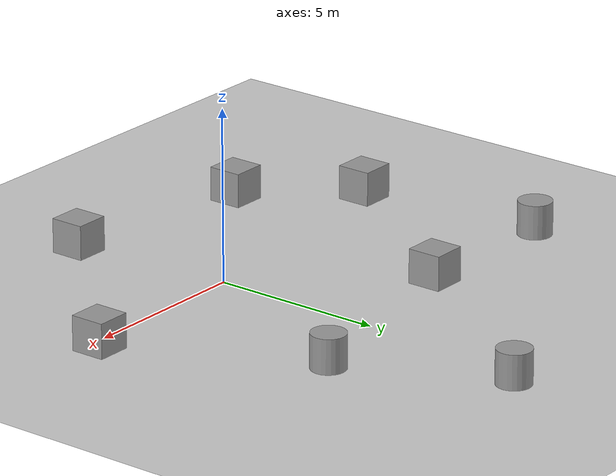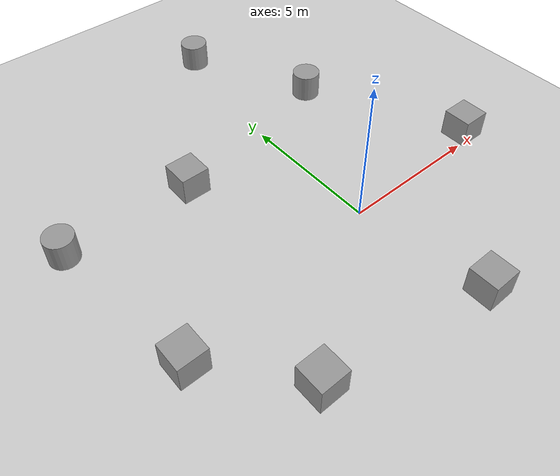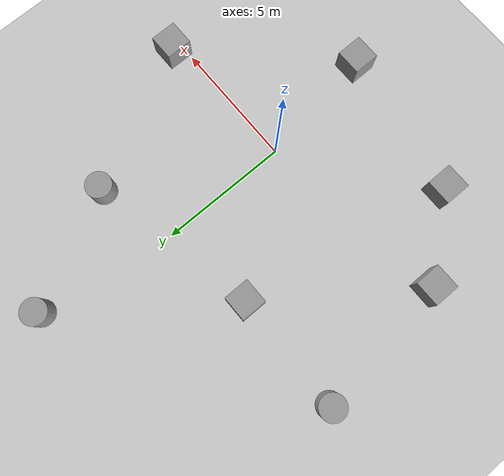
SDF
<sdf version="1.7">
 <world name="default">
  <light name="sun" type="directional">
   <pose>0 0 10 0 -0 0</pose>
   <diffuse>0.8 0.8 0.8 1</diffuse>
   <specular>0.2 0.2 0.2 1</specular>
   <attenuation>
    <range>1000</range>
    <constant>0.9</constant>
    <linear>0.01</linear>
    <quadratic>0.001</quadratic>
   </attenuation>
   <direction>-0.5 0.1 -0.9</direction>
   <spot><inner_angle>0</inner_angle><outer_angle>0</outer_angle><falloff>0</falloff></spot>
  </light>
  <model name="ground_plane">
   <static>1</static>
   <link name="link">
    <collision name="collision">
     <geometry><plane><normal>0 0 1</normal><size>100 100</size></plane></geometry>
     <surface>
      <contact><collide_bitmask>65535</collide_bitmask></contact>
      <friction><ode><mu>100</mu><mu2>50</mu2></ode></friction>
     </surface>
    </collision>
    <visual name="visual">
     <cast_shadows>0</cast_shadows>
     <geometry><plane><normal>0 0 1</normal><size>100 100</size></plane></geometry>
     <material>
      <script><uri>file://media/materials/scripts/gazebo.material</uri><name>Gazebo/Grey</name></script>
     </material>
    </visual>
   </link>
  </model>
  <gravity>0 0 -9.8</gravity>
  <magnetic_field>6e-06 2.3e-05 -4.2e-05</magnetic_field>
  <atmosphere type="adiabatic"/>
  <physics type="ode">
   <max_step_size>0.001</max_step_size>
   <real_time_factor>1</real_time_factor>
   <real_time_update_rate>1000</real_time_update_rate>
  </physics>
  <scene><ambient>0.8 0.8 0.8 1</ambient><background>0.5 0.5 0.5 1</background><shadows>true</shadows></scene>
  <audio><device>default</device></audio>
  <spherical_coordinates>
   <surface_model>EARTH_WGS84</surface_model>
   <latitude_deg>0</latitude_deg>
   <longitude_deg>0</longitude_deg>
   <elevation>0</elevation>
   <heading_deg>0</heading_deg>
  </spherical_coordinates>
  <model name="unit_box">
   <pose>-3.55153 4.46563 0.5 0 -0 0</pose>
   <link name="link">
    <inertial>
     <mass>1</mass>
     <inertia>
      <ixx>0.166667</ixx>
      <ixy>0</ixy>
      <ixz>0</ixz>
      <iyy>0.166667</iyy>
      <iyz>0</iyz>
      <izz>0.166667</izz>
     </inertia>
    </inertial>
    <collision name="collision"><geometry><box><size>1 1 1</size></box></geometry></collision>
    <visual name="visual">
     <geometry><box><size>1 1 1</size></box></geometry>
     <material>
      <script><name>Gazebo/Grey</name><uri>file://media/materials/scripts/gazebo.material</uri></script>
     </material>
    </visual>
   </link>
  </model>
  <model name="unit_cylinder">
   <pose>2.89932 5.85328 0.499994 -4e-06 -4e-06 -0</pose>
   <link name="link">
    <inertial>
     <mass>1</mass>
     <inertia><ixx>0.145833</ixx><ixy>0</ixy><ixz>0</ixz><iyy>0.145833</iyy><iyz>0</iyz><izz>0.125</izz></inertia>
    </inertial>
    <collision name="collision">
     <geometry><cylinder><radius>0.5</radius><length>1</length></cylinder></geometry>
    </collision>
    <visual name="visual">
     <geometry><cylinder><radius>0.5</radius><length>1</length></cylinder></geometry>
     <material>
      <script><name>Gazebo/Grey</name><uri>file://media/materials/scripts/gazebo.material</uri></script>
     </material>
    </visual>
   </link>
  </model>
  <model name="unit_box_0">
   <pose>-7.406 -0.902154 0.5 0 -0 0</pose>
   <link name="link">
    <inertial>
     <mass>1</mass>
     <inertia>
      <ixx>0.166667</ixx>
      <ixy>0</ixy>
      <ixz>0</ixz>
      <iyy>0.166667</iyy>
      <iyz>0</iyz>
      <izz>0.166667</izz>
     </inertia>
    </inertial>
    <collision name="collision"><geometry><box><size>1 1 1</size></box></geometry></collision>
    <visual name="visual">
     <geometry><box><size>1 1 1</size></box></geometry>
     <material>
      <script><name>Gazebo/Grey</name><uri>file://media/materials/scripts/gazebo.material</uri></script>
     </material>
    </visual>
   </link>
  </model>
  <model name="unit_box_1">
   <pose>-5.07482 -3.68641 0.5 0 -0 0</pose>
   <link name="link">
    <inertial>
     <mass>1</mass>
     <inertia>
      <ixx>0.166667</ixx>
      <ixy>0</ixy>
      <ixz>0</ixz>
      <iyy>0.166667</iyy>
      <iyz>0</iyz>
      <izz>0.166667</izz>
     </inertia>
    </inertial>
    <collision name="collision"><geometry><box><size>1 1 1</size></box></geometry></collision>
    <visual name="visual">
     <geometry><box><size>1 1 1</size></box></geometry>
     <material>
      <script><name>Gazebo/Grey</name><uri>file://media/materials/scripts/gazebo.material</uri></script>
     </material>
    </visual>
   </link>
  </model>
  <model name="unit_box_2">
   <pose>5.61872 0.38453 0.5 0 -0 0</pose>
   <link name="link">
    <inertial>
     <mass>1</mass>
     <inertia>
      <ixx>0.166667</ixx>
      <ixy>0</ixy>
      <ixz>0</ixz>
      <iyy>0.166667</iyy>
      <iyz>0</iyz>
      <izz>0.166667</izz>
     </inertia>
    </inertial>
    <collision name="collision"><geometry><box><size>1 1 1</size></box></geometry></collision>
    <visual name="visual">
     <geometry><box><size>1 1 1</size></box></geometry>
     <material>
      <script><name>Gazebo/Grey</name><uri>file://media/materials/scripts/gazebo.material</uri></script>
     </material>
    </visual>
   </link>
  </model>
  <model name="unit_box_3">
   <pose>0.684673 -4.56839 0.5 0 -0 0</pose>
   <link name="link">
    <inertial>
     <mass>1</mass>
     <inertia>
      <ixx>0.166667</ixx>
      <ixy>0</ixy>
      <ixz>0</ixz>
      <iyy>0.166667</iyy>
      <iyz>0</iyz>
      <izz>0.166667</izz>
     </inertia>
    </inertial>
    <collision name="collision"><geometry><box><size>1 1 1</size></box></geometry></collision>
    <visual name="visual">
     <geometry><box><size>1 1 1</size></box></geometry>
     <material>
      <script><name>Gazebo/Grey</name><uri>file://media/materials/scripts/gazebo.material</uri></script>
     </material>
    </visual>
   </link>
  </model>
  <model name="unit_cylinder_0">
   <pose>0.765277 10.2346 0.499997 3e-06 3e-06 0</pose>
   <link name="link">
    <inertial>
     <mass>1</mass>
     <inertia><ixx>0.145833</ixx><ixy>0</ixy><ixz>0</ixz><iyy>0.145833</iyy><iyz>0</iyz><izz>0.125</izz></inertia>
    </inertial>
    <collision name="collision">
     <geometry><cylinder><radius>0.5</radius><length>1</length></cylinder></geometry>
    </collision>
    <visual name="visual">
     <geometry><cylinder><radius>0.5</radius><length>1</length></cylinder></geometry>
     <material>
      <script><name>Gazebo/Grey</name><uri>file://media/materials/scripts/gazebo.material</uri></script>
     </material>
    </visual>
   </link>
  </model>
  <model name="unit_cylinder_1">
   <pose>-8.11978 4.51743 0.499997 3e-06 3e-06 0</pose>
   <link name="link">
    <inertial>
     <mass>1</mass>
     <inertia><ixx>0.145833</ixx><ixy>0</ixy><ixz>0</ixz><iyy>0.145833</iyy><iyz>0</iyz><izz>0.125</izz></inertia>
    </inertial>
    <collision name="collision">
     <geometry><cylinder><radius>0.5</radius><length>1</length></cylinder></geometry>
    </collision>
    <visual name="visual">
     <geometry><cylinder><radius>0.5</radius><length>1</length></cylinder></geometry>
     <material>
      <script><name>Gazebo/Grey</name><uri>file://media/materials/scripts/gazebo.material</uri></script>
     </material>
    </visual>
   </link>
  </model>
 </world>
</sdf>
